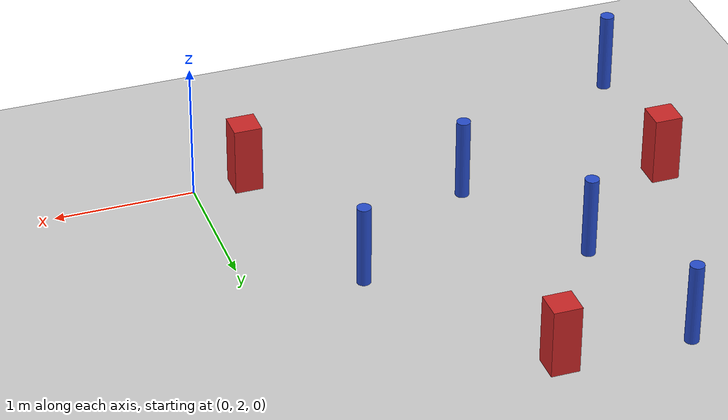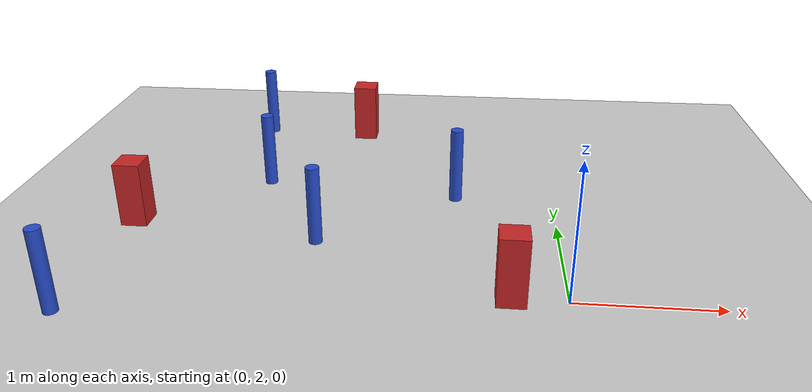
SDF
<sdf version="1.6">
 <world name="default">
  <model name="ground_plane">
   <static>1</static>
   <link name="link">
    <collision name="collision">
     <geometry><plane><normal>0 0 1</normal><size>100 100</size></plane></geometry>
     <surface><friction><ode><mu>100</mu><mu2>50</mu2></ode></friction></surface>
    </collision>
    <visual name="visual">
     <cast_shadows>0</cast_shadows>
     <geometry><plane><normal>0 0 1</normal><size>100 100</size></plane></geometry>
     <material>
      <script><uri>file://media/materials/scripts/gazebo.material</uri><name>Gazebo/Grey</name></script>
     </material>
    </visual>
   </link>
  </model>
  <model name="pole_obstacle5">
   <static>0</static>
   <link name="link">
    <pose>0 0 0.3 0 -0 0</pose>
    <inertial>
     <mass>1</mass>
     <inertia><ixx>0.145833</ixx><ixy>0</ixy><ixz>0</ixz><iyy>0.145833</iyy><iyz>0</iyz><izz>0.125</izz></inertia>
    </inertial>
    <collision name="collision">
     <geometry><cylinder><radius>0.05</radius><length>0.6</length></cylinder></geometry>
    </collision>
    <visual name="visual">
     <geometry><cylinder><radius>0.05</radius><length>0.6</length></cylinder></geometry>
     <material>
      <script><name>Gazebo/Blue</name><uri>file://media/materials/scripts/gazebo.material</uri></script>
     </material>
    </visual>
   </link>
   <pose>-3.27165 1.61809 -5e-06 0 -0 1.5e-05</pose>
  </model>
  <model name="square_post_obstacle31">
   <static>0</static>
   <link name="link">
    <pose>0 0 0.25 0 -0 0</pose>
    <inertial>
     <mass>100</mass>
     <inertia>
      <ixx>0.166667</ixx>
      <ixy>0</ixy>
      <ixz>0</ixz>
      <iyy>0.166667</iyy>
      <iyz>0</iyz>
      <izz>0.166667</izz>
     </inertia>
    </inertial>
    <collision name="collision"><geometry><box><size>0.2 0.2 0.5</size></box></geometry></collision>
    <visual name="visual">
     <geometry><box><size>0.2 0.2 0.5</size></box></geometry>
     <material>
      <script><name>Gazebo/Red</name><uri>file://media/materials/scripts/gazebo.material</uri></script>
     </material>
    </visual>
   </link>
   <pose>-1.65966 4.68439 0 -4e-06 1e-06 -0.000299</pose>
  </model>
  <model name="pole_obstacle61">
   <static>0</static>
   <link name="link">
    <pose>0 0 0.3 0 -0 0</pose>
    <inertial>
     <mass>1</mass>
     <inertia><ixx>0.145833</ixx><ixy>0</ixy><ixz>0</ixz><iyy>0.145833</iyy><iyz>0</iyz><izz>0.125</izz></inertia>
    </inertial>
    <collision name="collision">
     <geometry><cylinder><radius>0.05</radius><length>0.6</length></cylinder></geometry>
    </collision>
    <visual name="visual">
     <geometry><cylinder><radius>0.05</radius><length>0.6</length></cylinder></geometry>
     <material>
      <script><name>Gazebo/Blue</name><uri>file://media/materials/scripts/gazebo.material</uri></script>
     </material>
    </visual>
   </link>
   <pose>-2.32573 3.57509 -5e-06 0 0 -3.9e-05</pose>
  </model>
  <model name="pole_obstacle69">
   <static>0</static>
   <link name="link">
    <pose>0 0 0.3 0 -0 0</pose>
    <inertial>
     <mass>1</mass>
     <inertia><ixx>0.145833</ixx><ixy>0</ixy><ixz>0</ixz><iyy>0.145833</iyy><iyz>0</iyz><izz>0.125</izz></inertia>
    </inertial>
    <collision name="collision">
     <geometry><cylinder><radius>0.05</radius><length>0.6</length></cylinder></geometry>
    </collision>
    <visual name="visual">
     <geometry><cylinder><radius>0.05</radius><length>0.6</length></cylinder></geometry>
     <material>
      <script><name>Gazebo/Blue</name><uri>file://media/materials/scripts/gazebo.material</uri></script>
     </material>
    </visual>
   </link>
   <pose>-1.76915 2.62419 -5e-06 0 0 -4.9e-05</pose>
  </model>
  <model name="pole_obstacle77">
   <static>0</static>
   <link name="link">
    <pose>0 0 0.3 0 -0 0</pose>
    <inertial>
     <mass>1</mass>
     <inertia><ixx>0.145833</ixx><ixy>0</ixy><ixz>0</ixz><iyy>0.145833</iyy><iyz>0</iyz><izz>0.125</izz></inertia>
    </inertial>
    <collision name="collision">
     <geometry><cylinder><radius>0.05</radius><length>0.6</length></cylinder></geometry>
    </collision>
    <visual name="visual">
     <geometry><cylinder><radius>0.05</radius><length>0.6</length></cylinder></geometry>
     <material>
      <script><name>Gazebo/Blue</name><uri>file://media/materials/scripts/gazebo.material</uri></script>
     </material>
    </visual>
   </link>
   <pose>-2.57456 4.7129 -5e-06 0 0 -8e-06</pose>
  </model>
  <model name="pole_obstacle84">
   <static>0</static>
   <link name="link">
    <pose>0 0 0.3 0 -0 0</pose>
    <inertial>
     <mass>1</mass>
     <inertia><ixx>0.145833</ixx><ixy>0</ixy><ixz>0</ixz><iyy>0.145833</iyy><iyz>0</iyz><izz>0.125</izz></inertia>
    </inertial>
    <collision name="collision">
     <geometry><cylinder><radius>0.05</radius><length>0.6</length></cylinder></geometry>
    </collision>
    <visual name="visual">
     <geometry><cylinder><radius>0.05</radius><length>0.6</length></cylinder></geometry>
     <material>
      <script><name>Gazebo/Blue</name><uri>file://media/materials/scripts/gazebo.material</uri></script>
     </material>
    </visual>
   </link>
   <pose>-0.773284 3.39951 -5e-06 0 0 -7.9e-05</pose>
  </model>
  <model name="square_post_obstacle98">
   <static>0</static>
   <link name="link">
    <pose>0 0 0.25 0 -0 0</pose>
    <inertial>
     <mass>100</mass>
     <inertia>
      <ixx>0.166667</ixx>
      <ixy>0</ixy>
      <ixz>0</ixz>
      <iyy>0.166667</iyy>
      <iyz>0</iyz>
      <izz>0.166667</izz>
     </inertia>
    </inertial>
    <collision name="collision"><geometry><box><size>0.2 0.2 0.5</size></box></geometry></collision>
    <visual name="visual">
     <geometry><box><size>0.2 0.2 0.5</size></box></geometry>
     <material>
      <script><name>Gazebo/Red</name><uri>file://media/materials/scripts/gazebo.material</uri></script>
     </material>
    </visual>
   </link>
   <pose>-3.18503 2.83016 0 -4e-06 1e-06 -0.000299</pose>
  </model>
  <model name="square_post_obstacle121">
   <static>0</static>
   <link name="link">
    <pose>0 0 0.25 0 -0 0</pose>
    <inertial>
     <mass>100</mass>
     <inertia>
      <ixx>0.166667</ixx>
      <ixy>0</ixy>
      <ixz>0</ixz>
      <iyy>0.166667</iyy>
      <iyz>0</iyz>
      <izz>0.166667</izz>
     </inertia>
    </inertial>
    <collision name="collision"><geometry><box><size>0.2 0.2 0.5</size></box></geometry></collision>
    <visual name="visual">
     <geometry><box><size>0.2 0.2 0.5</size></box></geometry>
     <material>
      <script><name>Gazebo/Red</name><uri>file://media/materials/scripts/gazebo.material</uri></script>
     </material>
    </visual>
   </link>
   <pose>-0.375953 2.00438 0 -4e-06 1e-06 -0.000299</pose>
  </model>
 </world>
</sdf>
